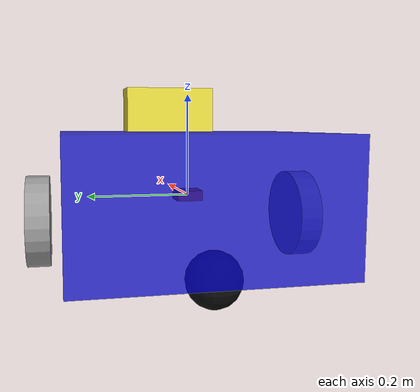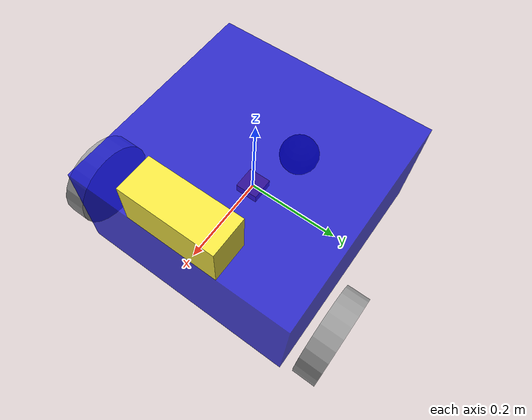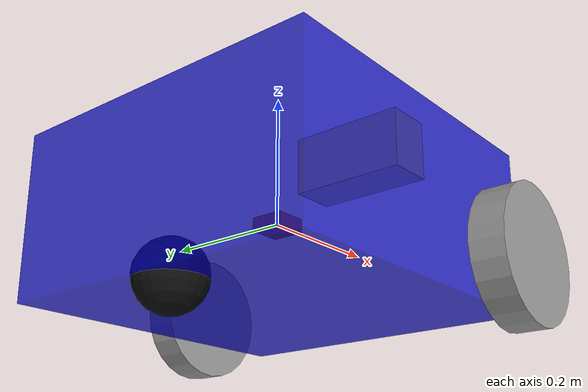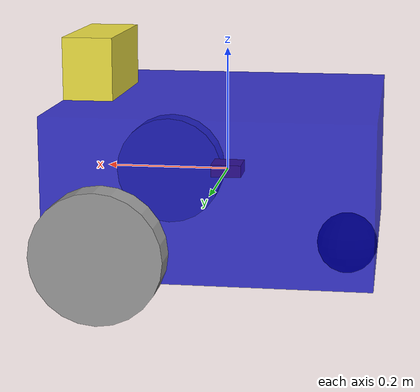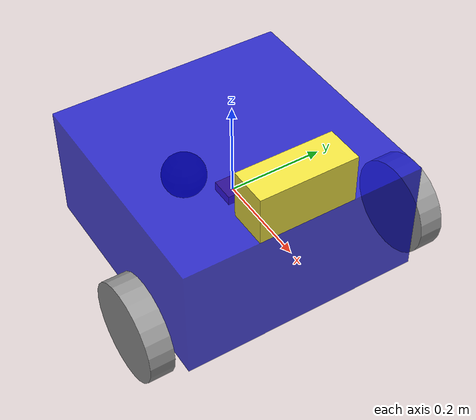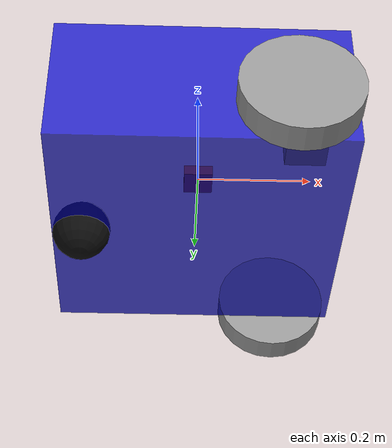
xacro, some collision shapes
<?xml version="1.0"?>
<robot xmlns:xacro="http://www.ros.org/wiki/xacro" name="swc">
    <!-- ROBOT DIMENSIONS -->
    <xacro:property name="wheel_len" value="0.05"/>
    <xacro:property name="wheel_diam" value="0.2" />
    <xacro:property name="pi" value="3.1415" />
    <xacro:property name="box_length" value="0.50"/>
    <xacro:property name="box_width" value="0.50"/>
    <xacro:property name="box_height" value="0.25"/>
    <xacro:property name="wheel_mass" value="0.2"/>
    <xacro:property name="box_mass" value="8"/>
    <xacro:property name="kinect_length" value="0.08"/>
    <xacro:property name="kinect_width" value="0.2"/>
    <xacro:property name="kinect_height" value="0.1"/>
    <xacro:property name="kinect_mass" value="0.01"/>

    <xacro:include filename="$(find project)/urdf/robot.gazebo"/>

    <material name="blue">
        <color rgba="0 0 0.8 0.75" />
    </material>
    <material name="white">
        <color rgba="1 1 1 1" />
    </material>
    <material name="black">
        <color rgba="0.05 0.05 0.05 1" />
    </material>

    <link name="base_link">
        <visual>
            <origin xyz="0 0 0" rpy="0 0 0"/>
            <geometry>
                <box size="${box_length} ${box_width} ${box_height}"/>
            </geometry>
            <material name="blue"/>
        </visual>

        <collision>
            <origin xyz="0 0 0" rpy="0 0 0" />
            <geometry>
                <box size="${box_length} ${box_width} ${box_height}"/>
            </geometry>
        </collision>

        <inertial>   <!-- CHANGE HERE THE REAL MASS AND INTERIA VALUES OF OUR ROBOT-->
            <mass value="${box_mass}" />
            <inertia ixx="0.625" ixy="0.0" ixz="0.0" iyy="1" iyz="0.0" izz="0.625" />
        </inertial>

<!--        THE CASTER-->
        <visual name="caster">
            <origin xyz="-0.20 0 -0.12" rpy="0 0 0" />
            <geometry>
                <sphere radius="0.05" />
            </geometry>
            <material name="black" />
        </visual>
        <collision>
            <origin xyz="-0.2 0 -0.12" rpy="0 0 0" />
            <geometry>
                <sphere radius="0.05" />
            </geometry>
        </collision>
        <inertial>
            <mass value="0.25" />
            <inertia ixx="0.001" ixy="0.0" ixz="0.0" iyy="0.001" iyz="0.0" izz="0.001" />
        </inertial>
    </link>

    <xacro:macro name="wheel" params="prefix_x prefix_y reflect_x reflect_y">

        <link name="${prefix_x}_${prefix_y}_wheel">
            <visual>
                <origin xyz="0 0 0" rpy="${pi/2} 0 0"/>
                <geometry>
                    <cylinder length="${wheel_len}" radius="${wheel_diam/2}"/>
                </geometry>
            </visual>

            <collision>
                <origin xyz="0 0 0" rpy="${pi/2} 0 0"/>
                <geometry>
                    <cylinder length="${wheel_len}" radius="${wheel_diam/2}"/>
                </geometry>
            </collision>

            <inertial>  <!-- CHANGE WHEEL INTERIAL VALUES HERE -->
                <mass value="${wheel_mass}"/>
                <inertia ixx="0.0008" ixy="0.0" ixz="0.0" iyy="0.0008" iyz="0.0" izz="0.0015" />
            </inertial>
        </link>

        <joint name="${prefix_x}_${prefix_y}_wheel_joint" type="continuous">
            <parent link="base_link"/>
            <child link="${prefix_x}_${prefix_y}_wheel"/>
            <origin xyz="${reflect_x*((box_length/2)-0.0)-(reflect_x*(wheel_diam/2))} ${reflect_y*(((wheel_len))+(box_width/2))} -0.07" rpy="0 0 0"/>
            <axis xyz="0 1 0"/>
            <limit effort="1000.0" velocity="100.0"/>
        </joint>

        <!--TRANSMISSION TO TELL GAZEBO WHAT TO DO WITH THIS JOINT (SHAFTS)-->
        <transmission name="${prefix_x}_${prefix_y}_shaft_trans">
            <type>transmission_interface/SimpleTransmission</type>
            <actuator name="${prefix_x}_${prefix_y}_wheel_motor">
                <hardwareInterface>hardware_interface/VelocityJointInterface</hardwareInterface>
                <mechanicalReduction>1</mechanicalReduction>
            </actuator>
            <joint name="${prefix_x}_${prefix_y}_wheel_joint">
                <hardwareInterface>hardware_interface/VelocityJointInterface</hardwareInterface>
            </joint>
        </transmission>

        <!-- SOME PHYSICAL PROPERTIES FOR THE WHEELS TO BE SIMULATED-->
        <gazebo reference="${prefix_x}_${prefix_y}_wheel">
            <mu1 value="200.0"/>
            <mu2 value="100.0"/>
            <kp value="1000000.0" />
            <kd value="1.0" />
            <material>Gazebo/Grey</material>
        </gazebo>

    </xacro:macro>
    <xacro:wheel prefix_x="front" prefix_y="right" reflect_x="1" reflect_y="-1"/>
    <xacro:wheel prefix_x="front" prefix_y="left" reflect_x="1" reflect_y="1"/>

    <!-- LINK AND JOINT FOR THE KINECT CAMERA-->
    <link name="kinect">
        <visual>
            <origin xyz="0 0 0" rpy="0 0 0"/>
            <geometry>
                <mesh filename="package://project/mesh/kinect.dae"/>
            </geometry>
        </visual>

        <collision>
            <origin xyz="0 0 0" rpy="0 0 0"/>
            <geometry>
                <box size="${kinect_length} ${kinect_width} ${kinect_height}"/>
            </geometry>
        </collision>

        <inertial>
            <mass value="${kinect_mass}"/>
            <inertia ixx="1e-6" ixy="0" ixz="0" iyy="1e-6" iyz="0" izz="1e-6"/>
        </inertial>
    </link>

    <joint name="kinect_joint" type="fixed">
        <parent link="base_link"/>
        <child link="kinect"/>
        <origin xyz="${(box_length/2)-(kinect_length/2)} 0 ${(box_height/2)+(kinect_height/2)}"/>
    </joint>

        <!-- kinect optical link for fixing the point cloud view-->
    <link name="kinect_optical">
        <collision>
            <origin xyz="0 0 0" rpy="0 0 0"/>
            <geometry>
                <box size="0.15 0.30 0.15"/>
            </geometry>
        </collision>
        <visual>
            <origin rpy="0 0 0" xyz="0 0 0"/>
            <geometry>
                <box size="0.05 0.05 0.05"/>
            </geometry>
        </visual>
        <inertial>
            <mass value="1e-5" />
            <origin xyz="0 0 0" rpy="0 0 0"/>
            <inertia ixx="1e-6" ixy="0" ixz="0" iyy="1e-6" iyz="0" izz="1e-6" />
        </inertial>
    </link>

    <joint name="kinect_optical_joint" type="fixed">
        <axis xyz="0 1 0"/>
        <origin xyz="0 0 0" rpy="-1.57 0 -1.57"/>
        <parent link="kinect"/>
        <child link="kinect_optical"/>
    </joint>

    <link name="imu_sensor">
        <visual>
            <origin xyz="0 0 0" rpy="0 0 0"/>
            <geometry>
                <box size="0.05 0.05 0.02"/>
            </geometry>
        </visual>
        <collision>
            <origin xyz="0 0 0" rpy="0 0 0"/>
            <geometry>
                <box size="0.05 0.05 0.02"/>
            </geometry>
        </collision>
        <inertial>
            <mass value="1e-5" />
            <origin xyz="0 0 0" rpy="0 0 0"/>
            <inertia ixx="1e-6" ixy="0" ixz="0" iyy="1e-6" iyz="0" izz="1e-6" />
        </inertial>
    </link>

    <joint name="imu_sensor_joint" type="fixed">
        <parent link="base_link"/>
        <child link="imu_sensor"/>
        <origin xyz="0 0 0" rpy="0 0 0"/>
    </joint>

</robot>
